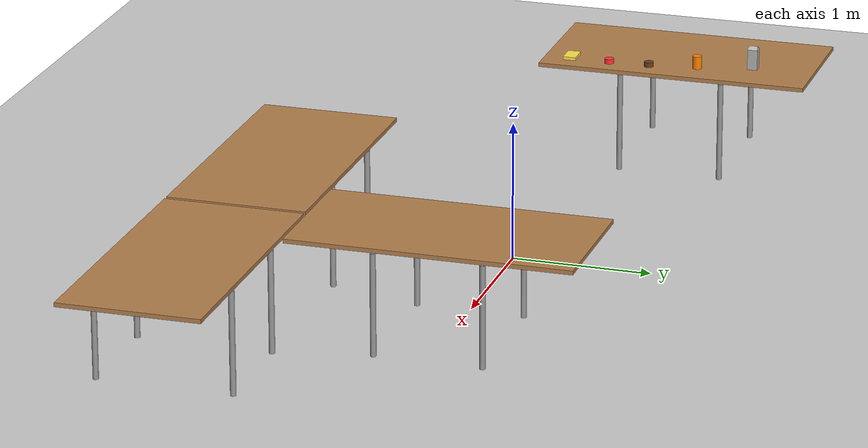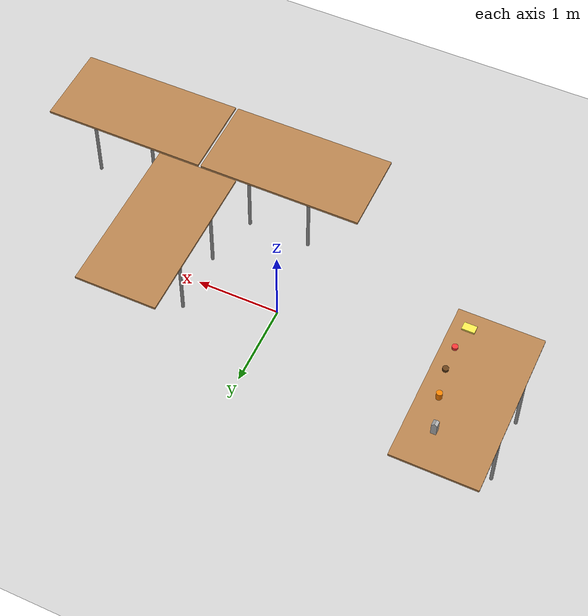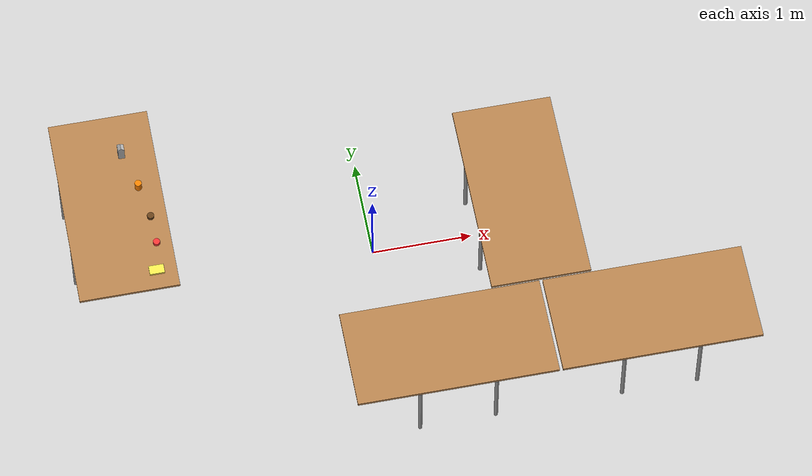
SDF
<sdf version="1.4">
 <world name="default">
  <physics type="ode">
   <gravity>0 0 -9.81</gravity>
   <ode>
    <solver><type>quick</type><iters>20</iters><sor>1.0</sor></solver>
    <constraints>
     <cfm>0.0</cfm>
     <erp>0.2</erp>
     <contact_max_correcting_vel>100.0</contact_max_correcting_vel>
     <contact_surface_layer>0.0</contact_surface_layer>
    </constraints>
   </ode>
   <real_time_update_rate>1000</real_time_update_rate>
   <max_step_size>0.001</max_step_size>
  </physics>
  <light type="directional" name="light1">
   <pose>-2 0 4 0 0 0</pose>
   <diffuse>1.0 1.0 1.0 1</diffuse>
   <specular>0.1 0.1 0.1 1</specular>
   <attenuation>
    <range>20</range>
    <constant>0.9</constant>
    <linear>0.01</linear>
    <quadratic>0.001</quadratic>
   </attenuation>
   <direction>0.2 0.0 -1.0</direction>
  </light>
  <include><uri>model://ground_plane</uri><pose>0.4 0.5 0.0 0.0 0.0 1.5708</pose></include>
  <include><uri>model://table1</uri><name>robot_table</name><pose>-2.5 0.6 0 0 0 0</pose></include>
  <include><uri>model://table1</uri><name>user_table</name><pose>1.5 0 0 0 0 0</pose></include>
  <include>
   <uri>model://table1</uri>
   <name>other_table</name>
   <pose>0.473178 -1.52266 0 0 0 1.5708</pose>
  </include>
  <include><uri>model://table1</uri><name>other_table2</name><pose>2.506 -1.52266 0 0 0 1.5708</pose></include>
  <include><uri>model://butter</uri><name>butter</name><pose>-2.2 -0.2 0.751 0 0 0</pose></include>
  <include><uri>model://tomato_sauce</uri><name>tomato_sauce</name><pose>-2.15 0.1 0.751 0 0 0</pose></include>
  <include><uri>model://nutella</uri><name>nutella</name><pose>-2.16 0.4 0.751 0 0 0</pose></include>
  <include><uri>model://apricot_jam</uri><name>apricot_jam</name><pose>-2.224 0.75 0.81 0 0 0</pose></include>
  <include><uri>model://milk2</uri><name>milk</name><pose>-2.324 1.15 0.812 0 0 0</pose></include>
  <plugin name="gazebo_ros_get_geometries_plugin" filename="libgazebo_ros_get_geometries_plugin.so"/>
 </world>
</sdf>

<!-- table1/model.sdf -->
<sdf version='1.6'>
  <model name='table1'>
    <link name='link'>
      <velocity_decay>
        <linear>0</linear>
        <angular>0</angular>
      </velocity_decay>
      <self_collide>0</self_collide>
      <kinematic>0</kinematic>
      <gravity>1</gravity>
      <enable_wind>0</enable_wind>
      <pose frame=''>0 0 0 0 -0 0</pose>
      <inertial>
        <mass>1</mass>
        <pose frame=''>0 0 0 0 -0 0</pose>
        <inertia>
          <ixx>1</ixx>
          <ixy>0</ixy>
          <ixz>0</ixz>
          <iyy>1</iyy>
          <iyz>0</iyz>
          <izz>1</izz>
        </inertia>
      </inertial>
      <visual name='visual1'>
        <pose frame=''>0 0 0.75 0 -0 0</pose>
        <geometry>
          <box>
            <size>1 2.0 0.03</size>
          </box>
        </geometry>
        <material>
          <script>
            <uri>file://media/materials/scripts/gazebo.material</uri>
            <name>Gazebo/Wood</name>
          </script>
          <shader type='vertex'>
            <normal_map>__default__</normal_map>
          </shader>
          <ambient>1 1 1 1</ambient>
          <diffuse>1 1 1 1</diffuse>
          <specular>0.2 0.2 0.2 1</specular>
          <emissive>0 0 0 1</emissive>
        </material>
        <transparency>0</transparency>
        <cast_shadows>1</cast_shadows>
      </visual>
      <visual name='front_left_leg'>
        <pose frame=''>0.48 0.38 0.3525 0 -0 0</pose>
        <geometry>
          <cylinder>
            <radius>0.02</radius>
            <length>0.75</length>
          </cylinder>
        </geometry>
        <material>
          <script>
            <uri>file://media/materials/scripts/gazebo.material</uri>
            <name>Gazebo/Grey</name>
          </script>
          <shader type='vertex'>
            <normal_map>__default__</normal_map>
          </shader>
          <ambient>0.3 0.3 0.3 1</ambient>
          <diffuse>0.7 0.7 0.7 1</diffuse>
          <specular>0.01 0.01 0.01 1</specular>
          <emissive>0 0 0 1</emissive>
        </material>
        <transparency>0</transparency>
        <cast_shadows>1</cast_shadows>
      </visual>
      <visual name='front_right_leg'>
        <pose frame=''>0.48 -0.38 0.3525 0 -0 0</pose>
        <geometry>
          <cylinder>
            <radius>0.02</radius>
            <length>0.75</length>
          </cylinder>
        </geometry>
        <material>
          <script>
            <uri>file://media/materials/scripts/gazebo.material</uri>
            <name>Gazebo/Grey</name>
          </script>
          <shader type='vertex'>
            <normal_map>__default__</normal_map>
          </shader>
          <ambient>0.3 0.3 0.3 1</ambient>
          <diffuse>0.7 0.7 0.7 1</diffuse>
          <specular>0.01 0.01 0.01 1</specular>
          <emissive>0 0 0 1</emissive>
        </material>
        <transparency>0</transparency>
        <cast_shadows>1</cast_shadows>
      </visual>
      <visual name='back_right_leg'>
        <pose frame=''>-0.48 -0.38 0.3525 0 -0 0</pose>
        <geometry>
          <cylinder>
            <radius>0.02</radius>
            <length>0.75</length>
          </cylinder>
        </geometry>
        <material>
          <script>
            <uri>file://media/materials/scripts/gazebo.material</uri>
            <name>Gazebo/Grey</name>
          </script>
          <shader type='vertex'>
            <normal_map>__default__</normal_map>
          </shader>
          <ambient>0.3 0.3 0.3 1</ambient>
          <diffuse>0.7 0.7 0.7 1</diffuse>
          <specular>0.01 0.01 0.01 1</specular>
          <emissive>0 0 0 1</emissive>
        </material>
        <transparency>0</transparency>
        <cast_shadows>1</cast_shadows>
      </visual>
      <visual name='back_left_leg'>
        <pose frame=''>-0.48 0.38 0.3525 0 -0 0</pose>
        <geometry>
          <cylinder>
            <radius>0.02</radius>
            <length>0.75</length>
          </cylinder>
        </geometry>
        <material>
          <script>
            <uri>file://media/materials/scripts/gazebo.material</uri>
            <name>Gazebo/Grey</name>
          </script>
          <shader type='vertex'>
            <normal_map>__default__</normal_map>
          </shader>
          <ambient>0.3 0.3 0.3 1</ambient>
          <diffuse>0.7 0.7 0.7 1</diffuse>
          <specular>0.01 0.01 0.01 1</specular>
          <emissive>0 0 0 1</emissive>
        </material>
        <transparency>0</transparency>
        <cast_shadows>1</cast_shadows>
      </visual>
      <collision name='surface'>
        <laser_retro>0</laser_retro>
        <max_contacts>10</max_contacts>
        <pose frame=''>0 0 0.75 0 -0 0</pose>
        <geometry>
          <box>
            <size>1 2.0 0.015</size>
          </box>
        </geometry>
        <surface>
          <friction>
            <ode>
              <mu>1</mu>
              <mu2>1</mu2>
              <fdir1>0 0 0</fdir1>
              <slip1>0</slip1>
              <slip2>0</slip2>
            </ode>
            <torsional>
              <coefficient>1</coefficient>
              <patch_radius>0</patch_radius>
              <surface_radius>0</surface_radius>
              <use_patch_radius>1</use_patch_radius>
              <ode>
                <slip>0</slip>
              </ode>
            </torsional>
          </friction>
          <bounce>
            <restitution_coefficient>0</restitution_coefficient>
            <threshold>1e+06</threshold>
          </bounce>
          <contact>
            <collide_without_contact>0</collide_without_contact>
            <collide_without_contact_bitmask>1</collide_without_contact_bitmask>
            <collide_bitmask>1</collide_bitmask>
            <ode>
              <soft_cfm>0</soft_cfm>
              <soft_erp>0.2</soft_erp>
              <kp>1e+13</kp>
              <kd>1</kd>
              <max_vel>0.01</max_vel>
              <min_depth>0</min_depth>
            </ode>
            <bullet>
              <split_impulse>1</split_impulse>
              <split_impulse_penetration_threshold>-0.01</split_impulse_penetration_threshold>
              <soft_cfm>0</soft_cfm>
              <soft_erp>0.2</soft_erp>
              <kp>1e+13</kp>
              <kd>1</kd>
            </bullet>
          </contact>
        </surface>
      </collision>
      <collision name='front_left_leg'>
        <laser_retro>0</laser_retro>
        <max_contacts>10</max_contacts>
        <pose frame=''>0.48 0.38 0.3525 0 -0 0</pose>
        <geometry>
          <cylinder>
            <radius>0.02</radius>
            <length>0.75</length>
          </cylinder>
        </geometry>
        <surface>
          <friction>
            <ode>
              <mu>1</mu>
              <mu2>1</mu2>
              <fdir1>0 0 0</fdir1>
              <slip1>0</slip1>
              <slip2>0</slip2>
            </ode>
            <torsional>
              <coefficient>1</coefficient>
              <patch_radius>0</patch_radius>
              <surface_radius>0</surface_radius>
              <use_patch_radius>1</use_patch_radius>
              <ode>
                <slip>0</slip>
              </ode>
            </torsional>
          </friction>
          <bounce>
            <restitution_coefficient>0</restitution_coefficient>
            <threshold>1e+06</threshold>
          </bounce>
          <contact>
            <collide_without_contact>0</collide_without_contact>
            <collide_without_contact_bitmask>1</collide_without_contact_bitmask>
            <collide_bitmask>1</collide_bitmask>
            <ode>
              <soft_cfm>0</soft_cfm>
              <soft_erp>0.2</soft_erp>
              <kp>1e+13</kp>
              <kd>1</kd>
              <max_vel>0.01</max_vel>
              <min_depth>0</min_depth>
            </ode>
            <bullet>
              <split_impulse>1</split_impulse>
              <split_impulse_penetration_threshold>-0.01</split_impulse_penetration_threshold>
              <soft_cfm>0</soft_cfm>
              <soft_erp>0.2</soft_erp>
              <kp>1e+13</kp>
              <kd>1</kd>
            </bullet>
          </contact>
        </surface>
      </collision>
      <collision name='front_right_leg'>
        <laser_retro>0</laser_retro>
        <max_contacts>10</max_contacts>
        <pose frame=''>0.48 -0.38 0.3525 0 -0 0</pose>
        <geometry>
          <cylinder>
            <radius>0.02</radius>
            <length>0.75</length>
          </cylinder>
        </geometry>
        <surface>
          <friction>
            <ode>
              <mu>1</mu>
              <mu2>1</mu2>
              <fdir1>0 0 0</fdir1>
              <slip1>0</slip1>
              <slip2>0</slip2>
            </ode>
            <torsional>
              <coefficient>1</coefficient>
              <patch_radius>0</patch_radius>
              <surface_radius>0</surface_radius>
              <use_patch_radius>1</use_patch_radius>
              <ode>
                <slip>0</slip>
              </ode>
            </torsional>
          </friction>
          <bounce>
            <restitution_coefficient>0</restitution_coefficient>
            <threshold>1e+06</threshold>
          </bounce>
          <contact>
            <collide_without_contact>0</collide_without_contact>
            <collide_without_contact_bitmask>1</collide_without_contact_bitmask>
            <collide_bitmask>1</collide_bitmask>
            <ode>
              <soft_cfm>0</soft_cfm>
              <soft_erp>0.2</soft_erp>
              <kp>1e+13</kp>
              <kd>1</kd>
              <max_vel>0.01</max_vel>
              <min_depth>0</min_depth>
            </ode>
            <bullet>
              <split_impulse>1</split_impulse>
              <split_impulse_penetration_threshold>-0.01</split_impulse_penetration_threshold>
              <soft_cfm>0</soft_cfm>
              <soft_erp>0.2</soft_erp>
              <kp>1e+13</kp>
              <kd>1</kd>
            </bullet>
          </contact>
        </surface>
      </collision>
      <collision name='back_right_leg'>
        <laser_retro>0</laser_retro>
        <max_contacts>10</max_contacts>
        <pose frame=''>-0.48 -0.38 0.3525 0 -0 0</pose>
        <geometry>
          <cylinder>
            <radius>0.02</radius>
            <length>0.75</length>
          </cylinder>
        </geometry>
        <surface>
          <friction>
            <ode>
              <mu>1</mu>
              <mu2>1</mu2>
              <fdir1>0 0 0</fdir1>
              <slip1>0</slip1>
              <slip2>0</slip2>
            </ode>
            <torsional>
              <coefficient>1</coefficient>
              <patch_radius>0</patch_radius>
              <surface_radius>0</surface_radius>
              <use_patch_radius>1</use_patch_radius>
              <ode>
                <slip>0</slip>
              </ode>
            </torsional>
          </friction>
          <bounce>
            <restitution_coefficient>0</restitution_coefficient>
            <threshold>1e+06</threshold>
          </bounce>
          <contact>
            <collide_without_contact>0</collide_without_contact>
            <collide_without_contact_bitmask>1</collide_without_contact_bitmask>
            <collide_bitmask>1</collide_bitmask>
            <ode>
              <soft_cfm>0</soft_cfm>
              <soft_erp>0.2</soft_erp>
              <kp>1e+13</kp>
              <kd>1</kd>
              <max_vel>0.01</max_vel>
              <min_depth>0</min_depth>
            </ode>
            <bullet>
              <split_impulse>1</split_impulse>
              <split_impulse_penetration_threshold>-0.01</split_impulse_penetration_threshold>
              <soft_cfm>0</soft_cfm>
              <soft_erp>0.2</soft_erp>
              <kp>1e+13</kp>
              <kd>1</kd>
            </bullet>
          </contact>
        </surface>
      </collision>
      <collision name='back_left_leg'>
        <laser_retro>0</laser_retro>
        <max_contacts>10</max_contacts>
        <pose frame=''>-0.48 0.38 0.3525 0 -0 0</pose>
        <geometry>
          <cylinder>
            <radius>0.02</radius>
            <length>0.75</length>
          </cylinder>
        </geometry>
        <surface>
          <friction>
            <ode>
              <mu>1</mu>
              <mu2>1</mu2>
              <fdir1>0 0 0</fdir1>
              <slip1>0</slip1>
              <slip2>0</slip2>
            </ode>
            <torsional>
              <coefficient>1</coefficient>
              <patch_radius>0</patch_radius>
              <surface_radius>0</surface_radius>
              <use_patch_radius>1</use_patch_radius>
              <ode>
                <slip>0</slip>
              </ode>
            </torsional>
          </friction>
          <bounce>
            <restitution_coefficient>0</restitution_coefficient>
            <threshold>1e+06</threshold>
          </bounce>
          <contact>
            <collide_without_contact>0</collide_without_contact>
            <collide_without_contact_bitmask>1</collide_without_contact_bitmask>
            <collide_bitmask>1</collide_bitmask>
            <ode>
              <soft_cfm>0</soft_cfm>
              <soft_erp>0.2</soft_erp>
              <kp>1e+13</kp>
              <kd>1</kd>
              <max_vel>0.01</max_vel>
              <min_depth>0</min_depth>
            </ode>
            <bullet>
              <split_impulse>1</split_impulse>
              <split_impulse_penetration_threshold>-0.01</split_impulse_penetration_threshold>
              <soft_cfm>0</soft_cfm>
              <soft_erp>0.2</soft_erp>
              <kp>1e+13</kp>
              <kd>1</kd>
            </bullet>
          </contact>
        </surface>
      </collision>
    </link>
    <static>1</static>
    <allow_auto_disable>1</allow_auto_disable>
  </model>
</sdf>

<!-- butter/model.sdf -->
<sdf version="1.6">
  <model name="butter">
    <link name="link">
      <inertial>
        <mass>0.96</mass>
        <inertia>
          <ixx>0.00017</ixx>
          <ixy>0.0</ixy>
          <ixz>0.0</ixz>
          <iyy>0.00019</iyy>
          <iyz>0.0</iyz>
          <izz>0.00016</izz>
        </inertia>
      </inertial>
      <visual name="visual">
        <geometry>
          <box>
              <size>0.15 0.095 0.075</size> <!-- dimensions in meters -->
          </box>
      </geometry>
        <material>
          <ambient>1 0.9 0.3 1</ambient> <!-- A vibrant yellow color -->
          <diffuse>1 0.9 0.3 1</diffuse>
          <specular>0.1 0.1 0.1 1</specular>
      </material>
      </visual>
      <collision name="collision">
        <geometry>
          <box>
              <size>0.15 0.095 0.075</size> <!-- dimensions in meters -->
          </box>
      </geometry>
      </collision>
    </link>
  </model>
</sdf>

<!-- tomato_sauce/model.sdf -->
<sdf version="1.6">
  <model name="tomato_sauce">
    <link name="link">
      <inertial>
        <mass>0.2</mass>
        <inertia>
          <ixx>0.00030625</ixx> <!-- Computed as 1/12 * 0.2 * (3*0.035^2 + 0.1^2) -->
          <ixy>0.0</ixy>
          <ixz>0.0</ixz>
          <iyy>0.00030625</iyy> <!-- Same as ixx -->
          <iyz>0.0</iyz>
          <izz>0.0001225</izz> <!-- Computed as 1/2 * 0.2 * 0.035^2 -->
        </inertia>
      </inertial>
      <visual name="visual">
        <geometry>
          <cylinder>
            <radius>0.035</radius>
            <length>0.1</length>
          </cylinder>
        </geometry>
        <material>
          <ambient>1 0.2 0.2 1</ambient> <!-- Bright tomato red -->
          <diffuse>1 0.2 0.2 1</diffuse>
          <specular>0.1 0.1 0.1 1</specular>
        </material>
      </visual>
      <collision name="collision">
        <geometry>
          <cylinder>
            <radius>0.035</radius>
            <length>0.1</length>
          </cylinder>
        </geometry>
      </collision>
    </link>
  </model>
</sdf>

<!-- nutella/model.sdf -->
<sdf version="1.6">
  <model name="nutella">
    <link name="link">
      <inertial>
        <mass>0.2</mass>
        <inertia>
          <ixx>0.00030625</ixx> <!-- Computed as 1/12 * 0.2 * (3*0.035^2 + 0.1^2) -->
          <ixy>0.0</ixy>
          <ixz>0.0</ixz>
          <iyy>0.00030625</iyy> <!-- Same as ixx -->
          <iyz>0.0</iyz>
          <izz>0.0001225</izz> <!-- Computed as 1/2 * 0.2 * 0.035^2 -->
        </inertia>
      </inertial>
      <visual name="visual">
        <geometry>
          <cylinder>
            <radius>0.035</radius>
            <length>0.1</length>
          </cylinder>
        </geometry>
        <material>
          <ambient>0.4 0.25 0.1 1</ambient>
          <diffuse>0.4 0.25 0.1 1</diffuse>
          <specular>0.1 0.1 0.1 1</specular>
        </material>
      </visual>
      <collision name="collision">
        <geometry>
          <cylinder>
            <radius>0.035</radius>
            <length>0.1</length>
          </cylinder>
        </geometry>
      </collision>
    </link>
  </model>
</sdf>

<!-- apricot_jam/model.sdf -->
<sdf version="1.6">
  <model name="apricot_jam">
    <link name="link">
      <inertial>
        <mass>0.2</mass>
        <inertia>
          <ixx>0.00030625</ixx> <!-- Computed as 1/12 * 0.2 * (3*0.035^2 + 0.1^2) -->
          <ixy>0.0</ixy>
          <ixz>0.0</ixz>
          <iyy>0.00030625</iyy> <!-- Same as ixx -->
          <iyz>0.0</iyz>
          <izz>0.0001225</izz> <!-- Computed as 1/2 * 0.2 * 0.035^2 -->
        </inertia>
      </inertial>
      <visual name="visual">
        <geometry>
          <cylinder>
            <radius>0.035</radius>
            <length>0.1</length>
          </cylinder>
        </geometry>
        <material>
          <ambient>1 0.5 0 1</ambient> <!-- Apricot color -->
          <diffuse>1 0.5 0 1</diffuse>
          <specular>0.1 0.1 0.1 1</specular>
        </material>
      </visual>
      <collision name="collision">
        <geometry>
          <cylinder>
            <radius>0.035</radius>
            <length>0.1</length>
          </cylinder>
        </geometry>
      </collision>
    </link>
  </model>
</sdf>

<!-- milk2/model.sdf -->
<sdf version='1.6'>
  <model name='milk2'>
    <link name='link_0'>
      <inertial>
        <mass>0.2</mass>
        <inertia>
          <ixx>0.0016524</ixx>
          <ixy>0</ixy>
          <ixz>0</ixz>
          <iyy>0.0016064</iyy>
          <iyz>0</iyz>
          <izz>0.000319</izz>
        </inertia>
        <pose frame=''>0 0 0 0 -0 0</pose>
      </inertial>
      <pose frame=''>-0.032 0 0.0 0 -0 0</pose>
      <gravity>1</gravity>
      <self_collide>0</self_collide>
      <kinematic>0</kinematic>
      <enable_wind>0</enable_wind>
      <visual name='visual'>
        <pose frame=''>0.0 -0.002 -0.1 0 -0 0</pose>
        <geometry>
          <mesh>
          	<uri>model:///milk2/meshes/milk2.dae</uri>
	  				<scale>0.01 0.01 0.01</scale>
        	</mesh>
        </geometry>
        <material>
	  			<script>
    	  		<uri>file://media/materials/scripts/gazebo.material</uri>
          	<name>Gazebo/DepthMapVS</name>
					</script>
					<lighting>1</lighting>
          <ambient>0.5 0.3 0.3 1</ambient>
          <diffuse>0.7 0.7 0.7 1</diffuse>
          <specular>0.01 0.01 0.01 1</specular>
          <emissive>0 0 0 1</emissive>
        </material>
        <transparency>0</transparency>
        <cast_shadows>1</cast_shadows>
      </visual>
      <collision name='collision'>
        <laser_retro>0</laser_retro>
        <max_contacts>10</max_contacts>
        <pose frame=''>0.02 -0.002 0.01 0 -0 0</pose>
        <geometry>
          <box>
            <size>0.064 0.074 0.23</size>
          </box>
        </geometry>
        <surface>
          <friction>
            <ode>
              <mu>1</mu>
              <mu2>1</mu2>
              <fdir1>0 0 0</fdir1>
              <slip1>0</slip1>
              <slip2>0</slip2>
            </ode>
            <torsional>
              <coefficient>1</coefficient>
              <patch_radius>0</patch_radius>
              <surface_radius>0</surface_radius>
              <use_patch_radius>1</use_patch_radius>
              <ode>
                <slip>0</slip>
              </ode>
            </torsional>
          </friction>
          <bounce>
            <restitution_coefficient>0</restitution_coefficient>
            <threshold>1e+06</threshold>
          </bounce>
          <contact>
            <collide_without_contact>0</collide_without_contact>
            <collide_without_contact_bitmask>1</collide_without_contact_bitmask>
            <collide_bitmask>1</collide_bitmask>
            <ode>
              <soft_cfm>0</soft_cfm>
              <soft_erp>0.2</soft_erp>
              <kp>1e+13</kp>
              <kd>1</kd>
              <max_vel>0.01</max_vel>
              <min_depth>0.001</min_depth>
            </ode>
            <bullet>
              <split_impulse>1</split_impulse>
              <split_impulse_penetration_threshold>-0.01</split_impulse_penetration_threshold>
              <soft_cfm>0</soft_cfm>
              <soft_erp>0.2</soft_erp>
              <kp>1e+13</kp>
              <kd>1</kd>
            </bullet>
          </contact>
        </surface>
      </collision>
    </link>
    <static>0</static>
    <allow_auto_disable>1</allow_auto_disable>
  </model>
</sdf>
